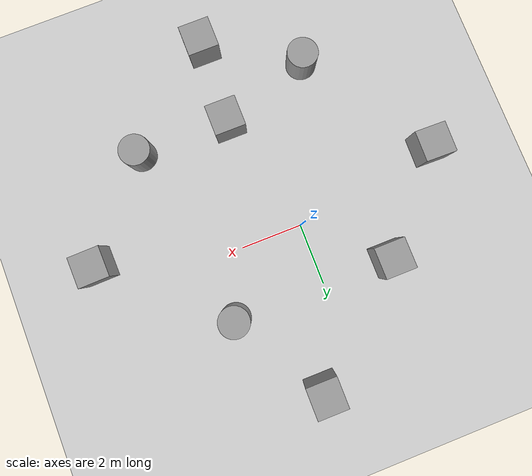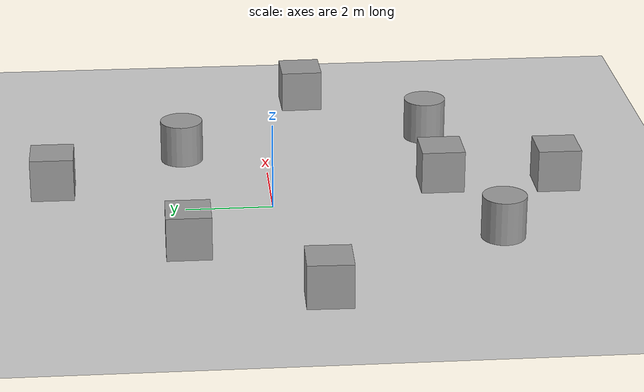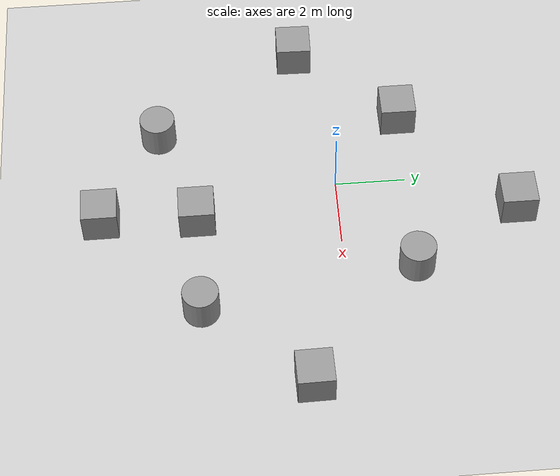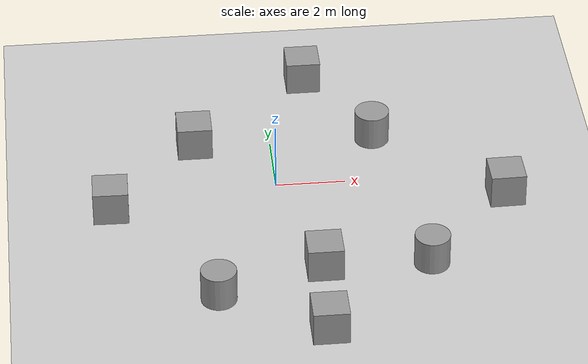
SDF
<sdf version="1.4">
 <world name="default">
  <light name="sun" type="directional">
   <pose>0 0 10 0 -0 0</pose>
   <diffuse>0.8 0.8 0.8 1</diffuse>
   <specular>0.2 0.2 0.2 1</specular>
   <attenuation>
    <range>1000</range>
    <constant>0.9</constant>
    <linear>0.01</linear>
    <quadratic>0.001</quadratic>
   </attenuation>
   <direction>-0.5 0.1 -0.9</direction>
  </light>
  <model name="ground_plane">
   <static>1</static>
   <link name="link">
    <collision name="collision">
     <geometry><plane><normal>0 0 1</normal><size>100 100</size></plane></geometry>
     <surface><friction><ode><mu>100</mu><mu2>50</mu2></ode></friction></surface>
    </collision>
    <visual name="visual">
     <cast_shadows>0</cast_shadows>
     <geometry><plane><normal>0 0 1</normal><size>100 100</size></plane></geometry>
     <material>
      <script><uri>file://media/materials/scripts/gazebo.material</uri><name>Gazebo/Grey</name></script>
     </material>
    </visual>
    <velocity_decay><linear>0</linear><angular>0</angular></velocity_decay>
   </link>
  </model>
  <physics type="ode">
   <max_step_size>0.001</max_step_size>
   <real_time_factor>1</real_time_factor>
   <real_time_update_rate>1000</real_time_update_rate>
   <gravity>0 0 -9.8</gravity>
  </physics>
  <scene><ambient>0.4 0.4 0.4 1</ambient><background>0.7 0.7 0.7 1</background><shadows>1</shadows></scene>
  <spherical_coordinates>
   <surface_model>EARTH_WGS84</surface_model>
   <latitude_deg>0</latitude_deg>
   <longitude_deg>0</longitude_deg>
   <elevation>0</elevation>
   <heading_deg>0</heading_deg>
  </spherical_coordinates>
  <model name="unit_box_1">
   <pose>-4.77335 -0.860665 0.497422 0.00043 9e-06 -0.021011</pose>
   <link name="link">
    <inertial>
     <mass>1</mass>
     <inertia><ixx>1</ixx><ixy>0</ixy><ixz>0</ixz><iyy>1</iyy><iyz>0</iyz><izz>1</izz></inertia>
    </inertial>
    <collision name="collision"><geometry><box><size>0.353652 12.0031 1</size></box></geometry></collision>
    <visual name="visual">
     <geometry><box><size>1 1 1</size></box></geometry>
     <material>
      <script><uri>file://media/materials/scripts/gazebo.material</uri><name>Gazebo/Grey</name></script>
     </material>
    </visual>
    <velocity_decay><linear>0</linear><angular>0</angular></velocity_decay>
   </link>
   <static>0</static>
  </model>
  <model name="unit_box_2">
   <pose>1.23508 5.0385 0.499546 0.000347 8.7e-05 -0.000985</pose>
   <link name="link">
    <inertial>
     <mass>1</mass>
     <inertia><ixx>1</ixx><ixy>0</ixy><ixz>0</ixz><iyy>1</iyy><iyz>0</iyz><izz>1</izz></inertia>
    </inertial>
    <collision name="collision"><geometry><box><size>11.3582 0.245819 1</size></box></geometry></collision>
    <visual name="visual">
     <geometry><box><size>1 1 1</size></box></geometry>
     <material>
      <script><uri>file://media/materials/scripts/gazebo.material</uri><name>Gazebo/Grey</name></script>
     </material>
    </visual>
    <velocity_decay><linear>0</linear><angular>0</angular></velocity_decay>
   </link>
   <static>0</static>
  </model>
  <model name="unit_box_3">
   <pose>0.87085 -6.69763 0.499449 0.000324 0.000105 0.000246</pose>
   <link name="link">
    <inertial>
     <mass>1</mass>
     <inertia><ixx>1</ixx><ixy>0</ixy><ixz>0</ixz><iyy>1</iyy><iyz>0</iyz><izz>1</izz></inertia>
    </inertial>
    <collision name="collision"><geometry><box><size>11.139 0.217486 1</size></box></geometry></collision>
    <visual name="visual">
     <geometry><box><size>1 1 1</size></box></geometry>
     <material>
      <script><uri>file://media/materials/scripts/gazebo.material</uri><name>Gazebo/Grey</name></script>
     </material>
    </visual>
    <velocity_decay><linear>0</linear><angular>0</angular></velocity_decay>
   </link>
   <static>0</static>
  </model>
  <model name="unit_box_4">
   <pose>6.4953 -1.12207 0.497698 -0.000394 7e-06 0.017561</pose>
   <link name="link">
    <inertial>
     <mass>1</mass>
     <inertia><ixx>1</ixx><ixy>0</ixy><ixz>0</ixz><iyy>1</iyy><iyz>0</iyz><izz>1</izz></inertia>
    </inertial>
    <collision name="collision"><geometry><box><size>0.267363 11.685 1</size></box></geometry></collision>
    <visual name="visual">
     <geometry><box><size>1 1 1</size></box></geometry>
     <material>
      <script><uri>file://media/materials/scripts/gazebo.material</uri><name>Gazebo/Grey</name></script>
     </material>
    </visual>
    <velocity_decay><linear>0</linear><angular>0</angular></velocity_decay>
   </link>
   <static>0</static>
  </model>
  <model name="unit_box_5">
   <pose>0.999724 -3.99703 0.499945 2.2e-05 -1.65436e-24 0.000304</pose>
   <link name="link">
    <inertial>
     <mass>1</mass>
     <inertia><ixx>1</ixx><ixy>0</ixy><ixz>0</ixz><iyy>1</iyy><iyz>0</iyz><izz>1</izz></inertia>
    </inertial>
    <collision name="collision"><geometry><box><size>1 5.12926 1</size></box></geometry></collision>
    <visual name="visual">
     <geometry><box><size>1 1 1</size></box></geometry>
     <material>
      <script><uri>file://media/materials/scripts/gazebo.material</uri><name>Gazebo/Grey</name></script>
     </material>
    </visual>
    <velocity_decay><linear>0</linear><angular>0</angular></velocity_decay>
   </link>
   <static>0</static>
  </model>
  <model name="unit_box_6">
   <pose>-2.21496 1.99289 0.499979 -7e-06 1e-06 0.000393</pose>
   <link name="link">
    <inertial>
     <mass>1</mass>
     <inertia><ixx>1</ixx><ixy>0</ixy><ixz>0</ixz><iyy>1</iyy><iyz>0</iyz><izz>1</izz></inertia>
    </inertial>
    <collision name="collision"><geometry><box><size>0.360225 5.84 1</size></box></geometry></collision>
    <visual name="visual">
     <geometry><box><size>1 1 1</size></box></geometry>
     <material>
      <script><uri>file://media/materials/scripts/gazebo.material</uri><name>Gazebo/Grey</name></script>
     </material>
    </visual>
    <velocity_decay><linear>0</linear><angular>0</angular></velocity_decay>
   </link>
   <static>0</static>
  </model>
  <model name="unit_cylinder_1">
   <pose>4 -4 0.499992 0 -0 0</pose>
   <link name="link">
    <inertial>
     <mass>1</mass>
     <inertia><ixx>1</ixx><ixy>0</ixy><ixz>0</ixz><iyy>1</iyy><iyz>0</iyz><izz>1</izz></inertia>
    </inertial>
    <collision name="collision">
     <geometry><cylinder><radius>0.5</radius><length>1</length></cylinder></geometry>
    </collision>
    <visual name="visual">
     <geometry><cylinder><radius>0.5</radius><length>1</length></cylinder></geometry>
     <material>
      <script><uri>file://media/materials/scripts/gazebo.material</uri><name>Gazebo/Grey</name></script>
     </material>
    </visual>
    <velocity_decay><linear>0</linear><angular>0</angular></velocity_decay>
   </link>
   <static>0</static>
  </model>
  <model name="unit_cylinder_2">
   <pose>-2 -5 0.499998 0 -0 0</pose>
   <link name="link">
    <inertial>
     <mass>1</mass>
     <inertia><ixx>1</ixx><ixy>0</ixy><ixz>0</ixz><iyy>1</iyy><iyz>0</iyz><izz>1</izz></inertia>
    </inertial>
    <collision name="collision">
     <geometry><cylinder><radius>0.5</radius><length>1</length></cylinder></geometry>
    </collision>
    <visual name="visual">
     <geometry><cylinder><radius>0.5</radius><length>1</length></cylinder></geometry>
     <material>
      <script><uri>file://media/materials/scripts/gazebo.material</uri><name>Gazebo/Grey</name></script>
     </material>
    </visual>
    <velocity_decay><linear>0</linear><angular>0</angular></velocity_decay>
   </link>
   <static>0</static>
  </model>
  <model name="unit_cylinder_3">
   <pose>3 2 0.499992 0 -0 0</pose>
   <link name="link">
    <inertial>
     <mass>1</mass>
     <inertia><ixx>1</ixx><ixy>0</ixy><ixz>0</ixz><iyy>1</iyy><iyz>0</iyz><izz>1</izz></inertia>
    </inertial>
    <collision name="collision">
     <geometry><cylinder><radius>0.5</radius><length>1</length></cylinder></geometry>
    </collision>
    <visual name="visual">
     <geometry><cylinder><radius>0.5</radius><length>1</length></cylinder></geometry>
     <material>
      <script><uri>file://media/materials/scripts/gazebo.material</uri><name>Gazebo/Grey</name></script>
     </material>
    </visual>
    <velocity_decay><linear>0</linear><angular>0</angular></velocity_decay>
   </link>
   <static>0</static>
  </model>
 </world>
</sdf>
